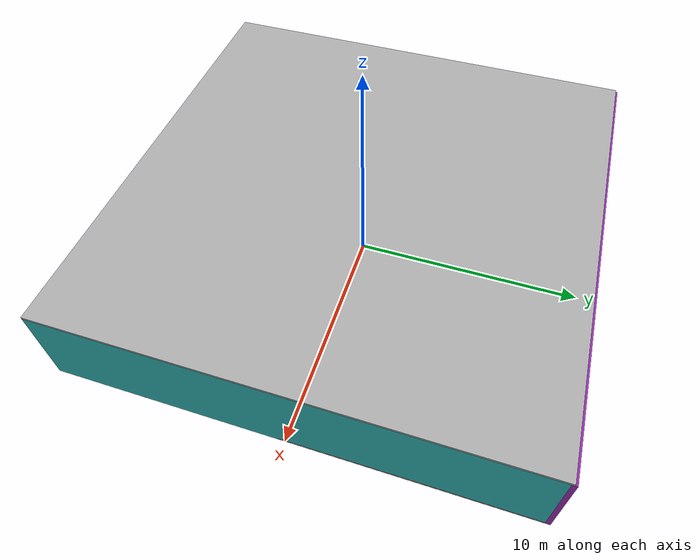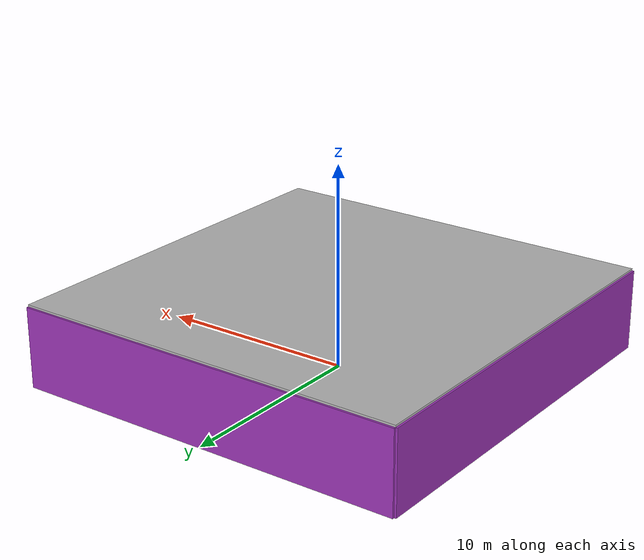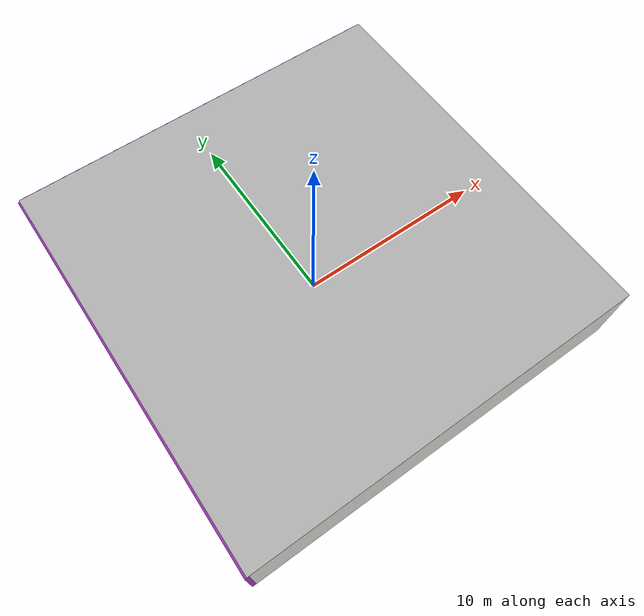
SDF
<sdf version="1.4">
 <world name="default">
  <physics type="ode">
   <max_step_size>0.001</max_step_size>
   <real_time_factor>1</real_time_factor>
   <real_time_update_rate>1000</real_time_update_rate>
   <gravity>0 0 -9.8</gravity>
  </physics>
  <scene><ambient>0.4 0.4 0.4 1</ambient><background>0.7 0.7 0.7 1</background><shadows>1</shadows></scene>
  <model name="Surrounding">
   <static>1</static>
   <link name="Ceiling">
    <collision name="Ceiling_Collision"><geometry><box><size>20 20 0.1</size></box></geometry></collision>
    <visual name="Ceiling_Visual">
     <geometry><box><size>20 20 0.1</size></box></geometry>
     <material>
      <script><uri>file://media/materials/scripts/gazebo.material</uri><name>Gazebo/CloudySky</name></script>
     </material>
    </visual>
    <pose>0 0 4.05 0 0 0</pose>
   </link>
   <link name="Wall_South">
    <collision name="Wall_South_Collision">
     <geometry><box><size>20 0 4</size></box></geometry>
     <pose>0 0 2 0 -0 0</pose>
    </collision>
    <visual name="Wall_South_Visual">
     <pose>0 0 2 0 -0 0</pose>
     <geometry><box><size>20 0 4</size></box></geometry>
     <material>
      <script><uri>file://media/materials/scripts/gazebo.material</uri><name>Gazebo/CeilingTiled</name></script>
     </material>
    </visual>
    <velocity_decay><linear>0</linear><angular>0</angular></velocity_decay>
    <pose>0 -10 0 0 -0 0</pose>
   </link>
   <link name="Wall_East">
    <collision name="Wall_21_Collision">
     <geometry><box><size>20 0 4</size></box></geometry>
     <pose>0 0 2 0 -0 0</pose>
    </collision>
    <visual name="Wall_21_Visual">
     <pose>0 0 2 0 -0 0</pose>
     <geometry><box><size>20 0 4</size></box></geometry>
     <material>
      <script>
       <uri>file://media/materials/scripts/gazebo.material</uri>
       <name>Gazebo/TurquoiseGlowOutline</name>
      </script>
     </material>
    </visual>
    <velocity_decay><linear>0</linear><angular>0</angular></velocity_decay>
    <pose>10 0 0 0 -0 1.5708</pose>
   </link>
   <link name="Wall_North">
    <collision name="Wall_22_Collision">
     <geometry><box><size>20 0.2 4</size></box></geometry>
     <pose>0 0 2 0 -0 0</pose>
    </collision>
    <visual name="Wall_22_Visual">
     <pose>0 0 2 0 -0 0</pose>
     <geometry><box><size>20 0.2 4</size></box></geometry>
     <material>
      <script><uri>file://media/materials/scripts/gazebo.material</uri><name>Gazebo/Purple</name></script>
     </material>
    </visual>
    <velocity_decay><linear>0</linear><angular>0</angular></velocity_decay>
    <pose>0 10 0 0 -0 0</pose>
   </link>
   <link name="Wall_West">
    <collision name="Wall_23_Collision">
     <geometry><box><size>20 0.2 4</size></box></geometry>
     <pose>0 0 2 0 -0 0</pose>
    </collision>
    <visual name="Wall_23_Visual">
     <pose>0 0 2 0 -0 0</pose>
     <geometry><box><size>20 0.2 4</size></box></geometry>
     <material>
      <script><uri>file://media/materials/scripts/gazebo.material</uri><name>Gazebo/PurpleGlow</name></script>
     </material>
    </visual>
    <velocity_decay><linear>0</linear><angular>0</angular></velocity_decay>
    <pose>-10 0 0 0 0 -1.5708</pose>
   </link>
   <link name="Ground_link">
    <collision name="collision">
     <pose>0 0 .05 0 -0 0</pose>
     <geometry><box><size>20 20 0.1</size></box></geometry>
    </collision>
    <visual name="visual">
     <pose>0 0 .05 0 -0 0</pose>
     <geometry><box><size>20 20 0.1</size></box></geometry>
     <material>
      <script><uri>file://media/materials/scripts/gazebo.material</uri><name>Gazebo/Black</name></script>
     </material>
    </visual>
   </link>
   <static>1</static>
  </model>
  <spherical_coordinates>
   <surface_model>EARTH_WGS84</surface_model>
   <latitude_deg>0</latitude_deg>
   <longitude_deg>0</longitude_deg>
   <elevation>0</elevation>
   <heading_deg>0</heading_deg>
  </spherical_coordinates>
  <light name="lightball_0" type="diffuse">
   <diffuse>0.8 0.8 0.8 1</diffuse>
   <specular>0.2 0.2 0.2 1</specular>
   <attenuation>
    <range>100</range>
    <constant>0.7</constant>
    <linear>0.01</linear>
    <quadratic>0.001</quadratic>
   </attenuation>
   <direction>-0.5 0.1 -0.9</direction>
   <pose>-5.24969411307 -4.41057793298 2.80392617405 0 0 0</pose>
  </light>
  <light name="lightball_1" type="diffuse">
   <diffuse>0.8 0.8 0.8 1</diffuse>
   <specular>0.2 0.2 0.2 1</specular>
   <attenuation>
    <range>100</range>
    <constant>0.7</constant>
    <linear>0.01</linear>
    <quadratic>0.001</quadratic>
   </attenuation>
   <direction>-0.5 0.1 -0.9</direction>
   <pose>-8.13976903678 -0.0809853196554 2.54052141596 0 0 0</pose>
  </light>
  <light name="lightball_2" type="diffuse">
   <diffuse>0.8 0.8 0.8 1</diffuse>
   <specular>0.2 0.2 0.2 1</specular>
   <attenuation>
    <range>100</range>
    <constant>0.7</constant>
    <linear>0.01</linear>
    <quadratic>0.001</quadratic>
   </attenuation>
   <direction>-0.5 0.1 -0.9</direction>
   <pose>3.93458810769 -1.59306575624 2.06155787932 0 0 0</pose>
  </light>
  <light name="lightball_3" type="diffuse">
   <diffuse>0.8 0.8 0.8 1</diffuse>
   <specular>0.2 0.2 0.2 1</specular>
   <attenuation>
    <range>100</range>
    <constant>0.7</constant>
    <linear>0.01</linear>
    <quadratic>0.001</quadratic>
   </attenuation>
   <direction>-0.5 0.1 -0.9</direction>
   <pose>4.74108967208 3.55826837343 2.73518060042 0 0 0</pose>
  </light>
  <light name="lightball_4" type="diffuse">
   <diffuse>0.8 0.8 0.8 1</diffuse>
   <specular>0.2 0.2 0.2 1</specular>
   <attenuation>
    <range>100</range>
    <constant>0.7</constant>
    <linear>0.01</linear>
    <quadratic>0.001</quadratic>
   </attenuation>
   <direction>-0.5 0.1 -0.9</direction>
   <pose>1.90518592208 3.42826971726 1.67647648876 0 0 0</pose>
  </light>
  <light name="lightball_5" type="diffuse">
   <diffuse>0.8 0.8 0.8 1</diffuse>
   <specular>0.2 0.2 0.2 1</specular>
   <attenuation>
    <range>100</range>
    <constant>0.7</constant>
    <linear>0.01</linear>
    <quadratic>0.001</quadratic>
   </attenuation>
   <direction>-0.5 0.1 -0.9</direction>
   <pose>5.59487947196 -9.79864959517 1.18665902161 0 0 0</pose>
  </light>
  <light name="lightball_6" type="diffuse">
   <diffuse>0.8 0.8 0.8 1</diffuse>
   <specular>0.2 0.2 0.2 1</specular>
   <attenuation>
    <range>100</range>
    <constant>0.7</constant>
    <linear>0.01</linear>
    <quadratic>0.001</quadratic>
   </attenuation>
   <direction>-0.5 0.1 -0.9</direction>
   <pose>3.1359494463 -7.97830528124 0.922701225791 0 0 0</pose>
  </light>
  <light name="lightball_7" type="diffuse">
   <diffuse>0.8 0.8 0.8 1</diffuse>
   <specular>0.2 0.2 0.2 1</specular>
   <attenuation>
    <range>100</range>
    <constant>0.7</constant>
    <linear>0.01</linear>
    <quadratic>0.001</quadratic>
   </attenuation>
   <direction>-0.5 0.1 -0.9</direction>
   <pose>-5.97880044034 -8.8783395035 0.8541718658 0 0 0</pose>
  </light>
  <light name="lightball_8" type="diffuse">
   <diffuse>0.8 0.8 0.8 1</diffuse>
   <specular>0.2 0.2 0.2 1</specular>
   <attenuation>
    <range>100</range>
    <constant>0.7</constant>
    <linear>0.01</linear>
    <quadratic>0.001</quadratic>
   </attenuation>
   <direction>-0.5 0.1 -0.9</direction>
   <pose>0.316538931999 5.9290798622 1.29045061004 0 0 0</pose>
  </light>
  <light name="lightball_9" type="diffuse">
   <diffuse>0.8 0.8 0.8 1</diffuse>
   <specular>0.2 0.2 0.2 1</specular>
   <attenuation>
    <range>100</range>
    <constant>0.7</constant>
    <linear>0.01</linear>
    <quadratic>0.001</quadratic>
   </attenuation>
   <direction>-0.5 0.1 -0.9</direction>
   <pose>-9.87852090021 1.66068933467 2.68533872284 0 0 0</pose>
  </light>
  <include><uri>model://cabinet</uri><pose>-7.5769341978 4.53851577051 0 0 0 2.89081418021</pose></include>
  <include><uri>model://table</uri><pose>-5.21760176618 7.44554091579 0 0 0 2.30638880643</pose></include>
  <include><uri>model://cabinet</uri><pose>-1.65292229774 -1.724341459 0 0 0 0.731205505587</pose></include>
  <include><uri>model://cabinet</uri><pose>-0.59693710946 4.48362447276 0 0 0 0.944534761253</pose></include>
  <include><uri>model://table</uri><pose>4.22089200987 7.93667373816 0 0 0 0.266179553128</pose></include>
 </world>
</sdf>

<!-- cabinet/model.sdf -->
<sdf version="1.5">
  <model name="cabinet">
    <static>true</static>
    <link name="cabinet_bottom_plate">
      <inertial>
        <pose>0 0 -1 0 0 0</pose>
        <inertia>
          <ixx>2.050000</ixx>
          <ixy>0</ixy>
          <ixz>0</ixz>
          <iyy>2.050000</iyy>
          <iyz>0</iyz>
          <izz>2.050000</izz>
        </inertia>
        <mass>25.000000</mass>
      </inertial>
      <collision name="cabinet_bottom_plate_geom">
        <pose>0 0 0.010000 0 0 0</pose>
        <geometry>
          <box>
            <size>0.450000 0.450000 0.020000</size>
          </box>
        </geometry>
      </collision>
      <visual name="cabinet_bottom_plate_geom_visual">
        <pose>0 0 0.010000 0 0 0</pose>
        <geometry>
          <box>
            <size>0.450000 0.450000 0.020000</size>
          </box>
        </geometry>
        <material>
          <script>
            <uri>model://media/materials/scripts/gazebo.material</uri>
            <name>Gazebo/Wood</name>
          </script>
        </material>
      </visual>
      <collision name="cabinet_bottom_plate_geom_cabinet_back_plate">
        <pose>0.235000 0 0.510000 0 0 0</pose>
        <geometry>
          <box>
            <size>0.020000 0.450000 1.020000</size>
          </box>
        </geometry>
      </collision>
      <visual name="cabinet_bottom_plate_geom_cabinet_back_plate_visual">
        <pose>0.235000 0 0.510000 0 0 0</pose>
        <geometry>
          <box>
            <size>0.020000 0.450000 1.020000</size>
          </box>
        </geometry>
        <material>
          <script>
            <uri>model://media/materials/scripts/gazebo.material</uri>
            <name>Gazebo/Wood</name>
          </script>
        </material>
      </visual>
      <collision name="cabinet_bottom_plate_geom_cabinet_left_plate">
        <pose>0 0.235000 0.510000 0 0 0</pose>
        <geometry>
          <box>
            <size>0.450000 0.020000 1.020000</size>
          </box>
        </geometry>
      </collision>
      <visual name="cabinet_bottom_plate_geom_cabinet_left_plate_visual">
        <pose>0 0.235000 0.510000 0 0 0</pose>
        <geometry>
          <box>
            <size>0.450000 0.020000 1.020000</size>
          </box>
        </geometry>
        <material>
          <script>
            <uri>model://media/materials/scripts/gazebo.material</uri>
            <name>Gazebo/Wood</name>
          </script>
        </material>
      </visual>
      <collision name="cabinet_bottom_plate_geom_cabinet_middle_plate">
        <pose>0 0 0.510000 0 0 0</pose>
        <geometry>
          <box>
            <size>0.450000 0.450000 0.020000</size>
          </box>
        </geometry>
      </collision>
      <visual name="cabinet_bottom_plate_geom_cabinet_middle_plate_visual">
        <pose>0 0 0.510000 0 0 0</pose>
        <geometry>
          <box>
            <size>0.450000 0.450000 0.020000</size>
          </box>
        </geometry>
        <material>
          <script>
            <uri>model://media/materials/scripts/gazebo.material</uri>
            <name>Gazebo/Wood</name>
          </script>
        </material>
      </visual>
      <collision name="cabinet_bottom_plate_geom_cabinet_right_plate">
        <pose>0 -0.235000 0.510000 0 0 0</pose>
        <geometry>
          <box>
            <size>0.450000 0.020000 1.020000</size>
          </box>
        </geometry>
      </collision>
      <visual name="cabinet_bottom_plate_geom_cabinet_right_plate_visual">
        <pose>0 -0.235000 0.510000 0 0 0</pose>
        <geometry>
          <box>
            <size>0.450000 0.020000 1.020000</size>
          </box>
        </geometry>
        <material>
          <script>
            <uri>model://media/materials/scripts/gazebo.material</uri>
            <name>Gazebo/Wood</name>
          </script>
        </material>
      </visual>
      <collision name="cabinet_bottom_plate_geom_cabinet_top_plate">
        <pose>0 0 1.010000 0 0 0</pose>
        <geometry>
          <box>
            <size>0.450000 0.450000 0.020000</size>
          </box>
        </geometry>
      </collision>
      <visual name="cabinet_bottom_plate_geom_cabinet_top_plate_visual">
        <pose>0 0 1.010000 0 0 0</pose>
        <geometry>
          <box>
            <size>0.450000 0.450000 0.020000</size>
          </box>
        </geometry>
        <material>
          <script>
            <uri>model://media/materials/scripts/gazebo.material</uri>
            <name>Gazebo/Wood</name>
          </script>
        </material>
      </visual>
    </link>
  </model>
</sdf>

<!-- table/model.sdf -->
<sdf version="1.5">
  <model name="table">
    <static>true</static>
    <link name="link">
      <collision name="surface">
        <pose>0 0 1.0 0 0 0</pose>
        <geometry>
          <box>
            <size>1.5 0.8 0.03</size>
          </box>
        </geometry>
        <surface>
          <friction>
            <ode>
              <mu>0.6</mu>
              <mu2>0.6</mu2>
            </ode>
          </friction>
        </surface>
      </collision>
      <visual name="visual1">
        <pose>0 0 1.0 0 0 0</pose>
        <geometry>
          <box>
            <size>1.5 0.8 0.03</size>
          </box>
        </geometry>
        <material>
          <script>
            <uri>model://media/materials/scripts/gazebo.material</uri>
            <name>Gazebo/Wood</name>
          </script>
        </material>
      </visual>
      <collision name="front_left_leg">
        <pose>0.68 0.38 0.5 0 0 0</pose>
        <geometry>
          <cylinder>
            <radius>0.02</radius>
            <length>1.0</length>
          </cylinder>
        </geometry>
      </collision>
      <visual name="front_left_leg">
        <pose>0.68 0.38 0.5 0 0 0</pose>
        <geometry>
          <cylinder>
            <radius>0.02</radius>
            <length>1.0</length>
          </cylinder>
        </geometry>
        <material>
          <script>
            <uri>model://media/materials/scripts/gazebo.material</uri>
            <name>Gazebo/Grey</name>
          </script>
        </material>
      </visual>
      <collision name="front_right_leg">
        <pose>0.68 -0.38 0.5 0 0 0</pose>
        <geometry>
          <cylinder>
            <radius>0.02</radius>
            <length>1.0</length>
          </cylinder>
        </geometry>
      </collision>
      <visual name="front_right_leg">
        <pose>0.68 -0.38 0.5 0 0 0</pose>
        <geometry>
          <cylinder>
            <radius>0.02</radius>
            <length>1.0</length>
          </cylinder>
        </geometry>
        <material>
          <script>
            <uri>model://media/materials/scripts/gazebo.material</uri>
            <name>Gazebo/Grey</name>
          </script>
        </material>
      </visual>
      <collision name="back_right_leg">
        <pose>-0.68 -0.38 0.5 0 0 0</pose>
        <geometry>
          <cylinder>
            <radius>0.02</radius>
            <length>1.0</length>
          </cylinder>
        </geometry>
      </collision>
      <visual name="back_right_leg">
        <pose>-0.68 -0.38 0.5 0 0 0</pose>
        <geometry>
          <cylinder>
            <radius>0.02</radius>
            <length>1.0</length>
          </cylinder>
        </geometry>
        <material>
          <script>
            <uri>model://media/materials/scripts/gazebo.material</uri>
            <name>Gazebo/Grey</name>
          </script>
        </material>
      </visual>
      <collision name="back_left_leg">
        <pose>-0.68 0.38 0.5 0 0 0</pose>
        <geometry>
          <cylinder>
            <radius>0.02</radius>
            <length>1.0</length>
          </cylinder>
        </geometry>
      </collision>
      <visual name="back_left_leg">
        <pose>-0.68 0.38 0.5 0 0 0</pose>
        <geometry>
          <cylinder>
            <radius>0.02</radius>
            <length>1.0</length>
          </cylinder>
        </geometry>
        <material>
          <script>
            <uri>model://media/materials/scripts/gazebo.material</uri>
            <name>Gazebo/Grey</name>
          </script>
        </material>
      </visual>
    </link>
  </model>
</sdf>
